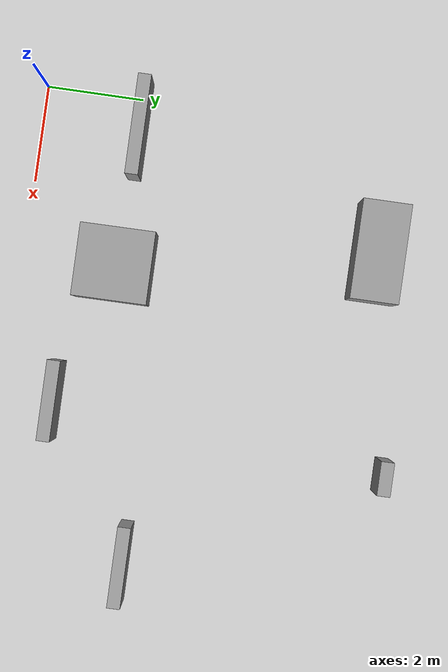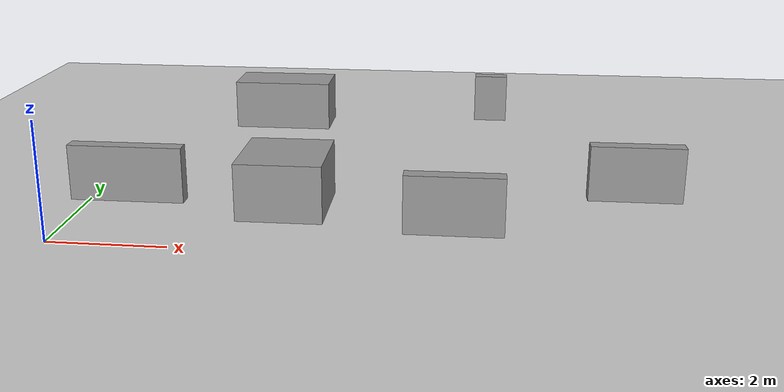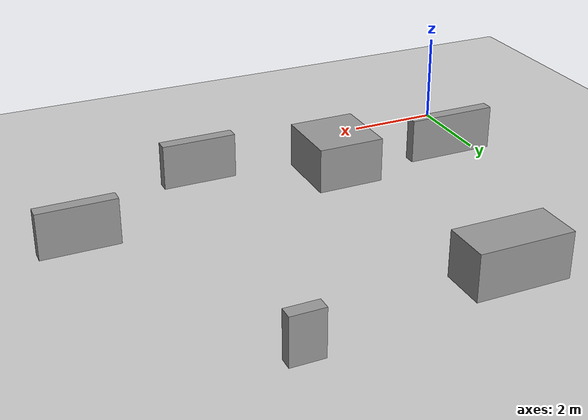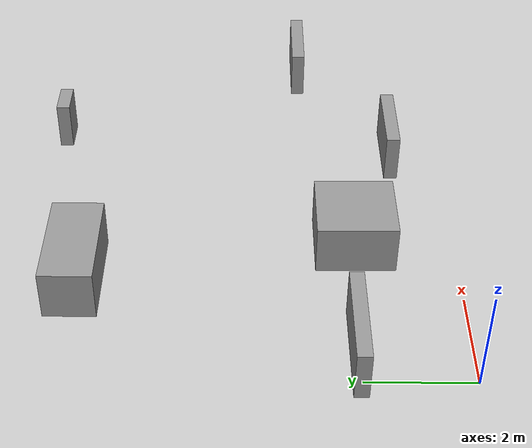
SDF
<sdf version="1.6">
 <world name="default">
  <light name="sun" type="directional">
   <pose>0 0 10 0 -0 0</pose>
   <diffuse>0.8 0.8 0.8 1</diffuse>
   <specular>0.2 0.2 0.2 1</specular>
   <attenuation>
    <range>1000</range>
    <constant>0.9</constant>
    <linear>0.01</linear>
    <quadratic>0.001</quadratic>
   </attenuation>
   <direction>-0.5 0.1 -0.9</direction>
  </light>
  <model name="ground_plane">
   <static>1</static>
   <link name="link">
    <collision name="collision">
     <geometry><plane><normal>0 0 1</normal><size>100 100</size></plane></geometry>
     <surface><friction><ode><mu>100</mu><mu2>50</mu2></ode></friction></surface>
    </collision>
    <visual name="visual">
     <cast_shadows>0</cast_shadows>
     <geometry><plane><normal>0 0 1</normal><size>100 100</size></plane></geometry>
     <material>
      <script><uri>file://media/materials/scripts/gazebo.material</uri><name>Gazebo/Grey</name></script>
     </material>
    </visual>
   </link>
  </model>
  <gravity>0 0 -9.8</gravity>
  <magnetic_field>6e-06 2.3e-05 -4.2e-05</magnetic_field>
  <atmosphere type="adiabatic"/>
  <physics name="default_physics" default="0" type="ode">
   <max_step_size>0.001</max_step_size>
   <real_time_factor>1</real_time_factor>
   <real_time_update_rate>1000</real_time_update_rate>
  </physics>
  <scene><ambient>0.4 0.4 0.4 1</ambient><background>0.7 0.7 0.7 1</background><shadows>1</shadows></scene>
  <spherical_coordinates>
   <surface_model>EARTH_WGS84</surface_model>
   <latitude_deg>0</latitude_deg>
   <longitude_deg>0</longitude_deg>
   <elevation>0</elevation>
   <heading_deg>0</heading_deg>
  </spherical_coordinates>
  <model name="unit_box">
   <pose>3.5164 1.95137 0.499995 0 6e-06 1.57746</pose>
   <link name="link">
    <inertial>
     <mass>1</mass>
     <inertia>
      <ixx>0.166667</ixx>
      <ixy>0</ixy>
      <ixz>0</ixz>
      <iyy>0.166667</iyy>
      <iyz>0</iyz>
      <izz>0.166667</izz>
     </inertia>
    </inertial>
    <collision name="collision"><geometry><box><size>1.53061 1.48054 1</size></box></geometry></collision>
    <visual name="visual">
     <geometry><box><size>1.53061 1.48054 1</size></box></geometry>
     <material>
      <script><name>Gazebo/Grey</name><uri>file://media/materials/scripts/gazebo.material</uri></script>
     </material>
    </visual>
   </link>
  </model>
  <model name="unit_box_clone">
   <pose>0.674308 2.04863 0.499909 1e-06 2.6e-05 0.004834</pose>
   <link name="link">
    <inertial>
     <mass>1</mass>
     <inertia>
      <ixx>0.166667</ixx>
      <ixy>0</ixy>
      <ixz>0</ixz>
      <iyy>0.166667</iyy>
      <iyz>0</iyz>
      <izz>0.166667</izz>
     </inertia>
    </inertial>
    <collision name="collision"><geometry><box><size>2.03065 0.27052 1</size></box></geometry></collision>
    <visual name="visual">
     <geometry><box><size>2.03065 0.27052 1</size></box></geometry>
     <material>
      <script><name>Gazebo/Grey</name><uri>file://media/materials/scripts/gazebo.material</uri></script>
     </material>
    </visual>
   </link>
  </model>
  <model name="unit_box_clone_clone">
   <pose>6.43036 1.0524 0.499995 0 6e-06 0.005268</pose>
   <link name="link">
    <inertial>
     <mass>1</mass>
     <inertia>
      <ixx>0.166667</ixx>
      <ixy>0</ixy>
      <ixz>0</ixz>
      <iyy>0.166667</iyy>
      <iyz>0</iyz>
      <izz>0.166667</izz>
     </inertia>
    </inertial>
    <collision name="collision"><geometry><box><size>1.64268 0.27052 1</size></box></geometry></collision>
    <visual name="visual">
     <geometry><box><size>1.64268 0.27052 1</size></box></geometry>
     <material>
      <script><name>Gazebo/Grey</name><uri>file://media/materials/scripts/gazebo.material</uri></script>
     </material>
    </visual>
   </link>
  </model>
  <model name="unit_box_clone_clone_0">
   <pose>2.51305 7.24105 0.499993 -4e-06 -5e-06 0.002699</pose>
   <link name="link">
    <inertial>
     <mass>1</mass>
     <inertia>
      <ixx>0.166667</ixx>
      <ixy>0</ixy>
      <ixz>0</ixz>
      <iyy>0.166667</iyy>
      <iyz>0</iyz>
      <izz>0.166667</izz>
     </inertia>
    </inertial>
    <collision name="collision"><geometry><box><size>2.03065 0.993677 1</size></box></geometry></collision>
    <visual name="visual">
     <geometry><box><size>2.03065 0.993677 1</size></box></geometry>
     <material>
      <script><name>Gazebo/Grey</name><uri>file://media/materials/scripts/gazebo.material</uri></script>
     </material>
    </visual>
   </link>
  </model>
  <model name="unit_box_clone_clone_clone">
   <pose>7.02939 7.98022 0.499997 3e-06 7e-06 0.003599</pose>
   <link name="link">
    <inertial>
     <mass>1</mass>
     <inertia>
      <ixx>0.166667</ixx>
      <ixy>0</ixy>
      <ixz>0</ixz>
      <iyy>0.166667</iyy>
      <iyz>0</iyz>
      <izz>0.166667</izz>
     </inertia>
    </inertial>
    <collision name="collision"><geometry><box><size>0.694641 0.27052 1</size></box></geometry></collision>
    <visual name="visual">
     <geometry><box><size>0.694641 0.27052 1</size></box></geometry>
     <material>
      <script><name>Gazebo/Grey</name><uri>file://media/materials/scripts/gazebo.material</uri></script>
     </material>
    </visual>
   </link>
  </model>
  <model name="unit_box_clone_clone_clone_0">
   <pose>9.5519 2.93053 0.5 0 -0 0.005294</pose>
   <link name="link">
    <inertial>
     <mass>1</mass>
     <inertia>
      <ixx>0.166667</ixx>
      <ixy>0</ixy>
      <ixz>0</ixz>
      <iyy>0.166667</iyy>
      <iyz>0</iyz>
      <izz>0.166667</izz>
     </inertia>
    </inertial>
    <collision name="collision"><geometry><box><size>1.64268 0.27052 1</size></box></geometry></collision>
    <visual name="visual">
     <geometry><box><size>1.64268 0.27052 1</size></box></geometry>
     <material>
      <script><name>Gazebo/Grey</name><uri>file://media/materials/scripts/gazebo.material</uri></script>
     </material>
    </visual>
   </link>
  </model>
 </world>
</sdf>
